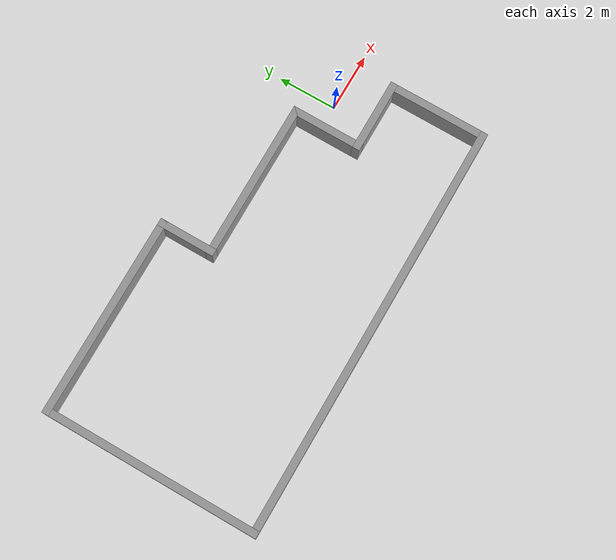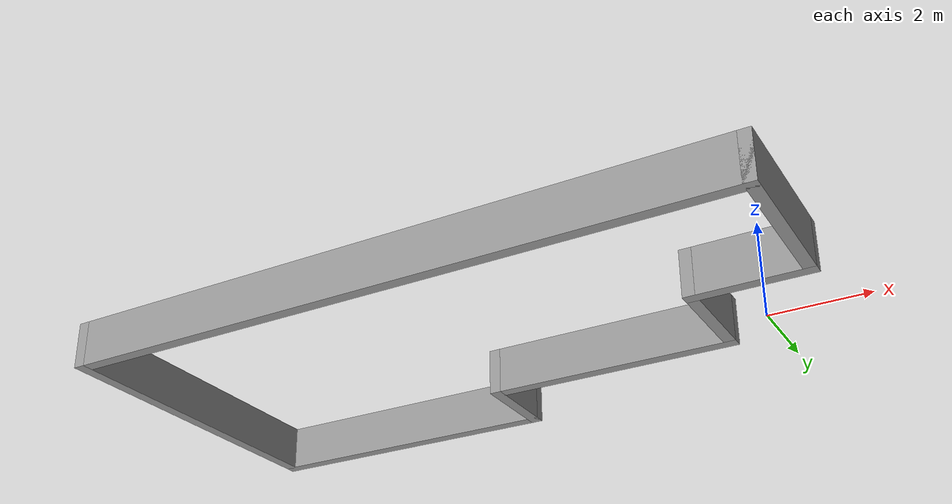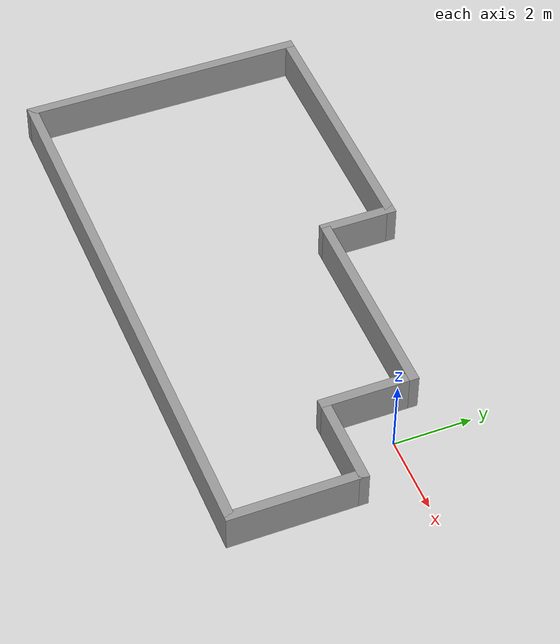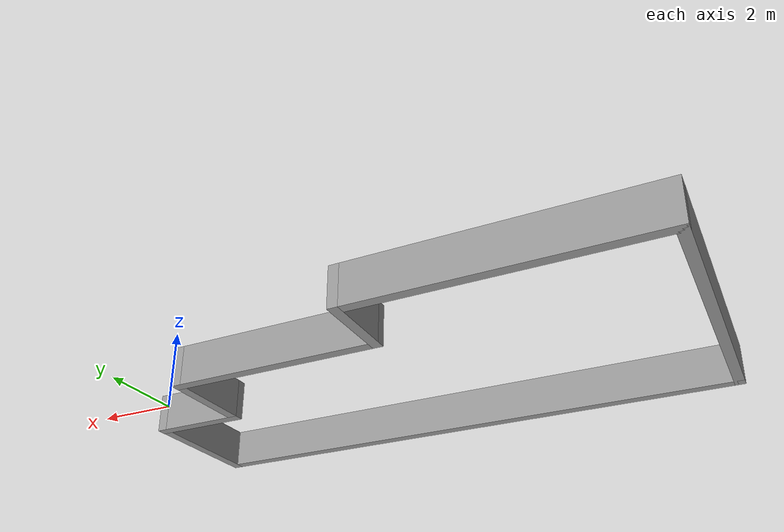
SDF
<?xml version='1.0'?>
<sdf version='1.7'>
  <model name='asymmetric_room'>
    <pose>-5.875 -1 0 0 -0 0</pose>
    <link name='Wall_53'>
      <collision name='Wall_53_Collision'>
        <geometry>
          <box>
            <size>7.5 0.25 1</size>
          </box>
        </geometry>
        <pose>0 0 0.5 0 -0 0</pose>
      </collision>
      <visual name='Wall_53_Visual'>
        <pose>0 0 0.5 0 -0 0</pose>
        <geometry>
          <box>
            <size>7.5 0.25 1</size>
          </box>
        </geometry>
        <material>
          <script>
            <uri>file://media/materials/scripts/gazebo.material</uri>
            <name>Gazebo/Grey</name>
          </script>
          <ambient>1 1 1 1</ambient>
        </material>
        <meta>
          <layer>0</layer>
        </meta>
      </visual>
      <pose>-7.125 0 0 0 -0 -1.5708</pose>
    </link>
    <link name='Wall_59'>
      <collision name='Wall_59_Collision'>
        <geometry>
          <box>
            <size>14.5 0.25 1</size>
          </box>
        </geometry>
        <pose>0 0 0.5 0 -0 0</pose>
      </collision>
      <visual name='Wall_59_Visual'>
        <pose>0 0 0.5 0 -0 0</pose>
        <geometry>
          <box>
            <size>14.5 0.25 1</size>
          </box>
        </geometry>
        <material>
          <script>
            <uri>file://media/materials/scripts/gazebo.material</uri>
            <name>Gazebo/Grey</name>
          </script>
          <ambient>1 1 1 1</ambient>
        </material>
        <meta>
          <layer>0</layer>
        </meta>
      </visual>
      <pose>-0 -3.625 0 0 -0 0</pose>
    </link>
    <link name='Wall_63'>
      <collision name='Wall_63_Collision'>
        <geometry>
          <box>
            <size>3.5 0.25 1</size>
          </box>
        </geometry>
        <pose>0 0 0.5 0 -0 0</pose>
      </collision>
      <visual name='Wall_63_Visual'>
        <pose>0 0 0.5 0 -0 0</pose>
        <geometry>
          <box>
            <size>3.5 0.25 1</size>
          </box>
        </geometry>
        <material>
          <script>
            <uri>file://media/materials/scripts/gazebo.material</uri>
            <name>Gazebo/Grey</name>
          </script>
          <ambient>1 1 1 1</ambient>
        </material>
        <meta>
          <layer>0</layer>
        </meta>
      </visual>
      <pose>7.125 -2 0 0 -0 1.5708</pose>
    </link>
    <link name='Wall_67'>
      <collision name='Wall_67_Collision'>
        <geometry>
          <box>
            <size>2.5 0.25 1</size>
          </box>
        </geometry>
        <pose>0 0 0.5 0 -0 0</pose>
      </collision>
      <visual name='Wall_67_Visual'>
        <pose>0 0 0.5 0 -0 0</pose>
        <geometry>
          <box>
            <size>2.5 0.25 1</size>
          </box>
        </geometry>
        <material>
          <script>
            <uri>file://media/materials/scripts/gazebo.material</uri>
            <name>Gazebo/Grey</name>
          </script>
          <ambient>1 1 1 1</ambient>
        </material>
        <meta>
          <layer>0</layer>
        </meta>
      </visual>
      <pose>6 -0.375 0 0 -0 3.14159</pose>
    </link>
    <link name='Wall_69'>
      <collision name='Wall_69_Collision'>
        <geometry>
          <box>
            <size>2.5 0.25 1</size>
          </box>
        </geometry>
        <pose>0 0 0.5 0 -0 0</pose>
      </collision>
      <visual name='Wall_69_Visual'>
        <pose>0 0 0.5 0 -0 0</pose>
        <geometry>
          <box>
            <size>2.5 0.25 1</size>
          </box>
        </geometry>
        <material>
          <script>
            <uri>file://media/materials/scripts/gazebo.material</uri>
            <name>Gazebo/Grey</name>
          </script>
          <ambient>1 1 1 1</ambient>
        </material>
        <meta>
          <layer>0</layer>
        </meta>
      </visual>
      <pose>4.875 0.75 0 0 -0 1.5708</pose>
    </link>
    <link name='Wall_71'>
      <collision name='Wall_71_Collision'>
        <geometry>
          <box>
            <size>5.5 0.25 1</size>
          </box>
        </geometry>
        <pose>0 0 0.5 0 -0 0</pose>
      </collision>
      <visual name='Wall_71_Visual'>
        <pose>0 0 0.5 0 -0 0</pose>
        <geometry>
          <box>
            <size>5.5 0.25 1</size>
          </box>
        </geometry>
        <material>
          <script>
            <uri>file://media/materials/scripts/gazebo.material</uri>
            <name>Gazebo/Grey</name>
          </script>
          <ambient>1 1 1 1</ambient>
        </material>
        <meta>
          <layer>0</layer>
        </meta>
      </visual>
      <pose>2.25 1.875 0 0 -0 3.14159</pose>
    </link>
    <link name='Wall_75'>
      <collision name='Wall_75_Collision'>
        <geometry>
          <box>
            <size>2 0.25 1</size>
          </box>
        </geometry>
        <pose>0 0 0.5 0 -0 0</pose>
      </collision>
      <visual name='Wall_75_Visual'>
        <pose>0 0 0.5 0 -0 0</pose>
        <geometry>
          <box>
            <size>2 0.25 1</size>
          </box>
        </geometry>
        <material>
          <script>
            <uri>file://media/materials/scripts/gazebo.material</uri>
            <name>Gazebo/Grey</name>
          </script>
          <ambient>1 1 1 1</ambient>
        </material>
        <meta>
          <layer>0</layer>
        </meta>
      </visual>
      <pose>-0.375 2.75 0 0 -0 1.5708</pose>
    </link>
    <link name='Wall_77'>
      <collision name='Wall_77_Collision'>
        <geometry>
          <box>
            <size>7 0.25 1</size>
          </box>
        </geometry>
        <pose>0 0 0.5 0 -0 0</pose>
      </collision>
      <visual name='Wall_77_Visual'>
        <pose>0 0 0.5 0 -0 0</pose>
        <geometry>
          <box>
            <size>7 0.25 1</size>
          </box>
        </geometry>
        <material>
          <script>
            <uri>file://media/materials/scripts/gazebo.material</uri>
            <name>Gazebo/Grey</name>
          </script>
          <ambient>1 1 1 1</ambient>
        </material>
        <meta>
          <layer>0</layer>
        </meta>
      </visual>
      <pose>-3.75 3.625 0 0 -0 3.14159</pose>
    </link>
    <static>1</static>
  </model>
</sdf>
